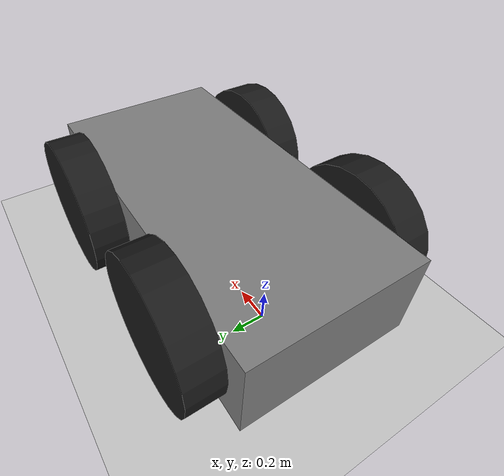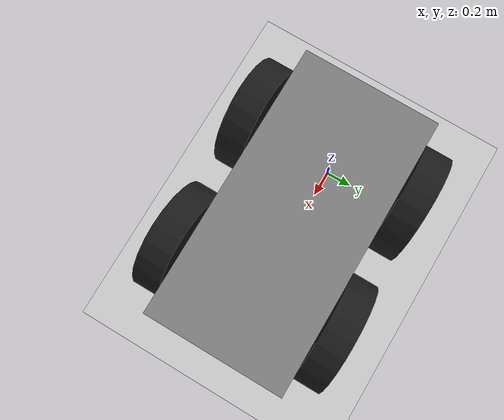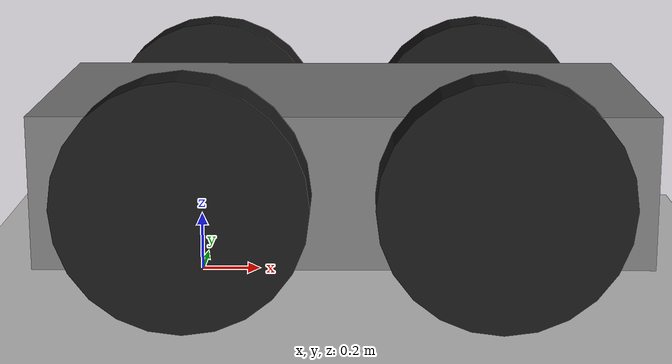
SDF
<?xml version="1.0" ?>
<sdf version="1.8">
    <world name="car_world">
        <physics name="1ms" type="ignored">
            <max_step_size>0.001</max_step_size>
            <real_time_factor>1.0</real_time_factor>
        </physics>
        <plugin
            filename="ignition-gazebo-physics-system"
            name="ignition::gazebo::systems::Physics">
        </plugin>
        <plugin
            filename="ignition-gazebo-user-commands-system"
            name="ignition::gazebo::systems::UserCommands">
        </plugin>
        <plugin
            filename="ignition-gazebo-scene-broadcaster-system"
            name="ignition::gazebo::systems::SceneBroadcaster">
        </plugin>

        <light type="directional" name="sun">
            <cast_shadows>true</cast_shadows>
            <pose>0 0 10 0 0 0</pose>
            <diffuse>0.8 0.8 0.8 1</diffuse>
            <specular>0.2 0.2 0.2 1</specular>
            <attenuation>
                <range>1000</range>
                <constant>0.9</constant>
                <linear>0.01</linear>
                <quadratic>0.001</quadratic>
            </attenuation>
            <direction>-0.5 0.1 -0.9</direction>
        </light>

        <model name="ground_plane">
            <static>true</static>
            <link name="link">
                <collision name="collision">
                <geometry>
                    <plane>
                    <normal>0 0 1</normal>
                    </plane>
                </geometry>
                </collision>
                <visual name="visual">
                <geometry>
                    <plane>
                    <normal>0 0 1</normal>
                    <size>100 100</size>
                    </plane>
                </geometry>
                <material>
                    <ambient>0.8 0.8 0.8 1</ambient>
                    <diffuse>0.8 0.8 0.8 1</diffuse>
                    <specular>0.8 0.8 0.8 1</specular>
                </material>
                </visual>
            </link>
        </model>

        <model name='vehicle_blue' canonical_link='chassis'>
            <pose relative_to='world'>0 0 0 0 0 0</pose>   <!--the pose is relative to the world by default-->

            <!--chassis-->
            <link name='chassis'>
                <pose relative_to='__model__'>0.5 0 0.4 0 0 0</pose>
                <inertial> <!--inertial properties of the link mass, inertia matix-->
                    <mass>1.14395</mass>
                    <inertia>
                        <ixx>0.095329</ixx>
                        <ixy>0</ixy>
                        <ixz>0</ixz>
                        <iyy>0.381317</iyy>
                        <iyz>0</iyz>
                        <izz>0.476646</izz>
                    </inertia>
                </inertial>
                <visual name='visual'>
                    <geometry>
                        <box>
                            <size>2.0 1.0 0.5</size>
                        </box>
                    </geometry>
                    <!--Color of the link-->
                    <material>
                        <ambient>0.5 0.5 0.5 1</ambient>
                        <diffuse>0.5 0.5 0.5 1</diffuse>
                        <specular>0.5 0.5 0.5 1</specular>
                    </material>
                </visual>
                <collision name='collision'>
                    <geometry>
                        <box>
                            <size>2.0 1.0 0.5</size>
                        </box>
                    </geometry>
                </collision>
            </link>

            <!--Left wheel-->
            <link name='left_wheel'>
                <pose relative_to="chassis">-0.5 0.6 0 -1.5707 0 0</pose> <!--angles are in radian-->
                <inertial>
                    <mass>1</mass>
                    <inertia>
                        <ixx>0.043333</ixx>
                        <ixy>0</ixy>
                        <ixz>0</ixz>
                        <iyy>0.043333</iyy>
                        <iyz>0</iyz>
                        <izz>0.08</izz>
                    </inertia>
                </inertial>
                <visual name='visual'>
                    <geometry>
                        <cylinder>
                            <radius>0.4</radius>
                            <length>0.2</length>
                        </cylinder>
                    </geometry>
                    <material>
                        <ambient>0.1 0.1 0.1 1</ambient>
                        <diffuse>0.1 0.1 0.1 1</diffuse>
                        <specular>0.1 0.1 0.1 1</specular>
                    </material>
                </visual>
                <collision name='collision'>
                    <geometry>
                        <cylinder>
                            <radius>0.4</radius>
                            <length>0.2</length>
                        </cylinder>
                    </geometry>
                </collision>
            </link>

            <!--Left wheel-->
            <link name='left_wheel_front'>
                <pose relative_to="chassis">0.5 0.6 0 -1.5707 0 0</pose> <!--angles are in radian-->
                <inertial>
                    <mass>1</mass>
                    <inertia>
                        <ixx>0.043333</ixx>
                        <ixy>0</ixy>
                        <ixz>0</ixz>
                        <iyy>0.043333</iyy>
                        <iyz>0</iyz>
                        <izz>0.08</izz>
                    </inertia>
                </inertial>
                <visual name='visual'>
                    <geometry>
                        <cylinder>
                            <radius>0.4</radius>
                            <length>0.2</length>
                        </cylinder>
                    </geometry>
                    <material>
                        <ambient>0.1 0.1 0.1 1</ambient>
                        <diffuse>0.1 0.1 0.1 1</diffuse>
                        <specular>0.1 0.1 0.1 1</specular>
                    </material>
                </visual>
                <collision name='collision'>
                    <geometry>
                        <cylinder>
                            <radius>0.4</radius>
                            <length>0.2</length>
                        </cylinder>
                    </geometry>
                </collision>
            </link>

            <!--The same as left wheel but with different position-->
            <link name='right_wheel'>
                <pose relative_to="chassis">-0.5 -0.6 0 -1.5707 0 0</pose> <!--angles are in radian-->
                <inertial>
                    <mass>1</mass>
                    <inertia>
                        <ixx>0.043333</ixx>
                        <ixy>0</ixy>
                        <ixz>0</ixz>
                        <iyy>0.043333</iyy>
                        <iyz>0</iyz>
                        <izz>0.08</izz>
                    </inertia>
                </inertial>
                <visual name='visual'>
                    <geometry>
                        <cylinder>
                            <radius>0.4</radius>
                            <length>0.2</length>
                        </cylinder>
                    </geometry>
                    <material>
                        <ambient>0.1 0.1 0.1 1</ambient>
                        <diffuse>0.1 0.1 0.1 1</diffuse>
                        <specular>0.1 0.1 0.1 1</specular>
                    </material>
                </visual>
                <collision name='collision'>
                    <geometry>
                        <cylinder>
                            <radius>0.4</radius>
                            <length>0.2</length>
                        </cylinder>
                    </geometry>
                </collision>
            </link>

            <!--The same as left wheel but with different position-->
            <link name='right_wheel_front'>
                <pose relative_to="chassis">0.5 -0.6 0 -1.5707 0 0</pose> <!--angles are in radian-->
                <inertial>
                    <mass>1</mass>
                    <inertia>
                        <ixx>0.043333</ixx>
                        <ixy>0</ixy>
                        <ixz>0</ixz>
                        <iyy>0.043333</iyy>
                        <iyz>0</iyz>
                        <izz>0.08</izz>
                    </inertia>
                </inertial>
                <visual name='visual'>
                    <geometry>
                        <cylinder>
                            <radius>0.4</radius>
                            <length>0.2</length>
                        </cylinder>
                    </geometry>
                    <material>
                        <ambient>0.1 0.1 0.1 1</ambient>
                        <diffuse>0.1 0.1 0.1 1</diffuse>
                        <specular>0.1 0.1 0.1 1</specular>
                    </material>
                </visual>
                <collision name='collision'>
                    <geometry>
                        <cylinder>
                            <radius>0.4</radius>
                            <length>0.2</length>
                        </cylinder>
                    </geometry>
                </collision>
            </link>

            <!--left wheel joint-->
            <joint name='left_wheel_joint' type='revolute'>
                <pose relative_to='left_wheel'/>
                <parent>chassis</parent>
                <child>left_wheel</child>
                <axis>
                    <xyz expressed_in='__model__'>0 1 0</xyz> <!--can be descired to any frame or even arbitrary frames-->
                    <limit>
                        <lower>-1.79769e+308</lower>    <!--negative infinity-->
                        <upper>1.79769e+308</upper>     <!--positive infinity-->
                    </limit>
                </axis>
            </joint>

            <!--right wheel joint-->
            <joint name='right_wheel_joint' type='revolute'>
                <pose relative_to='right_wheel'/>
                <parent>chassis</parent>
                <child>right_wheel</child>
                <axis>
                    <xyz expressed_in='__model__'>0 1 0</xyz>
                    <limit>
                        <lower>-1.79769e+308</lower>    <!--negative infinity-->
                        <upper>1.79769e+308</upper>     <!--positive infinity-->
                    </limit>
                </axis>
            </joint>

            <!--left wheel front joint-->
            <joint name='left_wheel_joint_connector' type='revolute'>
                <pose relative_to='left_wheel_front'/>
                <parent>chassis</parent>
                <child>left_wheel_front</child>
                <axis>
                    <xyz expressed_in='__model__'>0 1 0</xyz> <!--can be descired to any frame or even arbitrary frames-->
                    <limit>
                        <lower>-1.79769e+308</lower>    <!--negative infinity-->
                        <upper>1.79769e+308</upper>     <!--positive infinity-->
                    </limit>
                </axis>
            </joint>

            <!--right wheel front joint-->
            <joint name='right_wheel_joint_connector' type='revolute'>
                <pose relative_to='right_wheel_front'/>
                <parent>chassis</parent>
                <child>right_wheel_front</child>
                <axis>
                    <xyz expressed_in='__model__'>0 1 0</xyz>
                    <limit>
                        <lower>-1.79769e+308</lower>    <!--negative infinity-->
                        <upper>1.79769e+308</upper>     <!--positive infinity-->
                    </limit>
                </axis>
            </joint>

	    <plugin
                filename="libignition-gazebo-diff-drive-system.so"
                name="ignition::gazebo::systems::DiffDrive">
                <left_joint>left_wheel_joint</left_joint>
                <left_joint>left_wheel_joint_connector</left_joint>
                <right_joint>right_wheel_joint</right_joint>
                <right_joint>right_wheel_joint_connector</right_joint>
                <wheel_separation>1.2</wheel_separation>
                <wheel_radius>0.4</wheel_radius>
                <odom_publish_frequency>1</odom_publish_frequency>
                <topic>cmd_vel</topic>
            </plugin>

        </model>

        <!-- Moving Forward-->
        <plugin filename="libignition-gazebo-triggered-publisher-system.so"
                name="ignition::gazebo::systems::TriggeredPublisher">
            <input type="ignition.msgs.Int32" topic="/keyboard/keypress">
                <match field="data">16777235</match>
            </input>
            <output type="ignition.msgs.Twist" topic="/cmd_vel">
                linear: {x: 0.5}, angular: {z: 0.0}
            </output>
        </plugin>

        <!-- Moving Backward-->
        <plugin filename="libignition-gazebo-triggered-publisher-system.so"
                name="ignition::gazebo::systems::TriggeredPublisher">
            <input type="ignition.msgs.Int32" topic="/keyboard/keypress">
                <match field="data">16777237</match>
            </input>
            <output type="ignition.msgs.Twist" topic="/cmd_vel">
                linear: {x: -0.5}, angular: {z: 0.0}
            </output>
        </plugin>

        <!-- Moving Left-->
        <plugin filename="libignition-gazebo-triggered-publisher-system.so"
                name="ignition::gazebo::systems::TriggeredPublisher">
            <input type="ignition.msgs.Int32" topic="/keyboard/keypress">
                <match field="data">16777234</match>
            </input>
            <output type="ignition.msgs.Twist" topic="/cmd_vel">
                linear: {x: 0.0}, angular: {z: 0.5}
            </output>
        </plugin>

        <!-- Moving Right-->
        <plugin filename="libignition-gazebo-triggered-publisher-system.so"
                name="ignition::gazebo::systems::TriggeredPublisher">
            <input type="ignition.msgs.Int32" topic="/keyboard/keypress">
                <match field="data">16777236</match>
            </input>
            <output type="ignition.msgs.Twist" topic="/cmd_vel">
                linear: {x: 0.0}, angular: {z: -0.5}
            </output>
        </plugin>

        <!-- Stop Moving-->
        <plugin filename="libignition-gazebo-triggered-publisher-system.so"
                name="ignition::gazebo::systems::TriggeredPublisher">
            <input type="ignition.msgs.Int32" topic="/keyboard/keypress">
                <match field="data">83</match>
            </input>
            <output type="ignition.msgs.Twist" topic="/cmd_vel">
                linear: {x: 0.0}, angular: {z: 0}
            </output>
        </plugin>

    </world>
</sdf>
